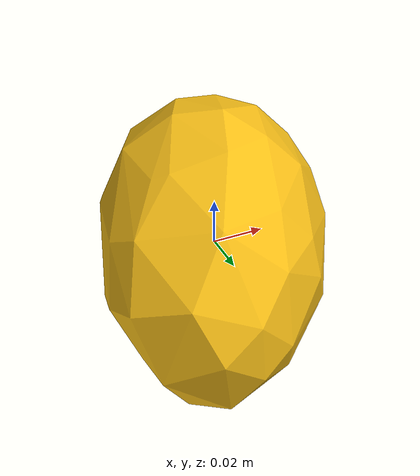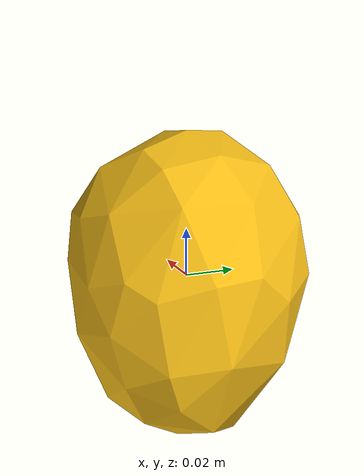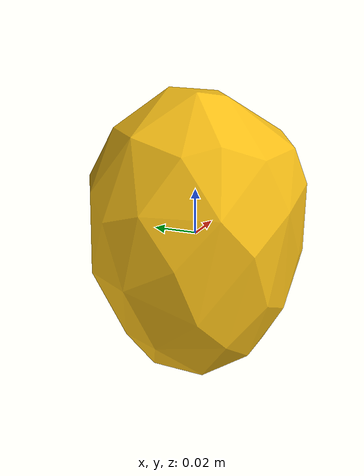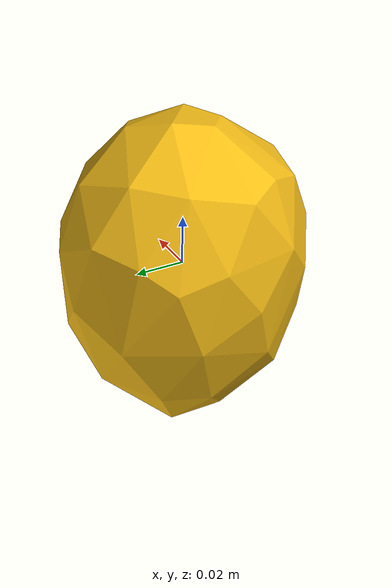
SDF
<sdf version="1.7">
  <model name="Mango">
    <link name="base_link">
      <inertial>
        <mass>0.2</mass>
        <inertia>
          <ixx>4.202e-04</ixx>
          <ixy>0.000e+00</ixy>
          <ixz>0.000e+00</ixz>
          <iyy>3.911e-04</iyy>
          <iyz>0.000e+00</iyz>
          <izz>2.714e-04</izz>
        </inertia>
      </inertial>
      <visual name="Mango_visual">
        <geometry>
          <mesh>
            <scale>1 1 1</scale>
            <uri>Mango_processed_simple_vis.obj</uri>
          </mesh>
        </geometry>
        <material>
          <diffuse>0.96 0.74 0.086 1.0</diffuse>
        </material>
      </visual>
      <collision name="collision_0000">
        <geometry>
          <mesh>
            <uri>Mango_processed_parts/Mango_processed_convex_piece_000.obj</uri>
            <drake:declare_convex xmlns:drake="drake.mit.edu"/>
          </mesh>
        </geometry>
        <surface>
          <friction>
            <ode>
              <mu>5</mu>
              <mu2>5</mu2>
            </ode>
          </friction>
        </surface>
      </collision>
    </link>
  </model>
</sdf>
